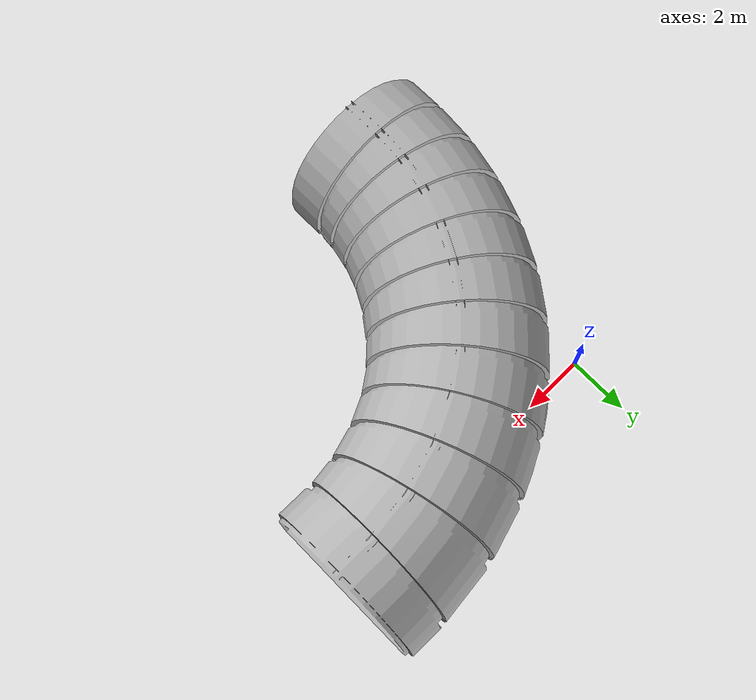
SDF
<?xml version="1.0" ?>
<sdf version="1.6">
  <model name="tunnel_tile_2">
    <static>true</static>
    <link name="link">
      <collision name="collision">
        <geometry>
          <mesh>
            <uri>model://tunnel_tile_2/meshes/tunnel_tile_2.dae</uri>
          </mesh>
        </geometry>
      </collision>
      <visual name="visual">
        <geometry>
          <mesh>
            <uri>model://tunnel_tile_2/meshes/tunnel_tile_2.dae</uri>
          </mesh>
        </geometry>
      </visual>
    </link>
  </model>
</sdf>
